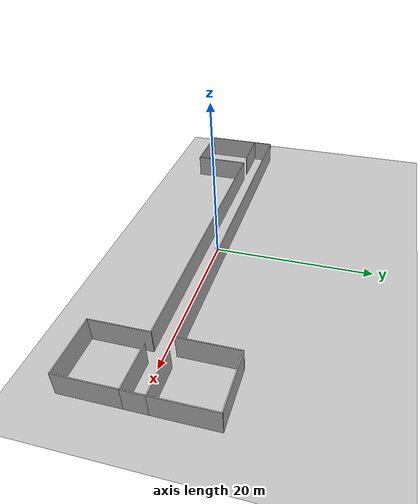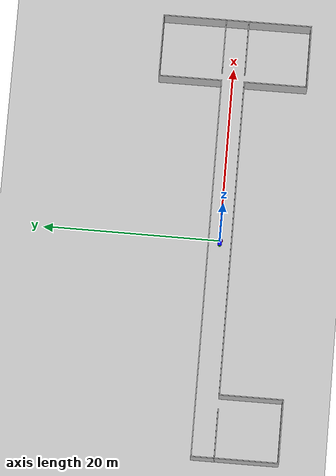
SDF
<?xml version="1.0" ?>
<sdf version="1.8">
    <world name="world_corridor">
        <physics name="1ms" type="ignored">
            <max_step_size>0.001</max_step_size>
            <real_time_factor>1.0</real_time_factor>
        </physics>

        <plugin
            filename="ignition-gazebo-physics-system"
            name="ignition::gazebo::systems::Physics">
        </plugin>
        <plugin
            filename="ignition-gazebo-user-commands-system"
            name="ignition::gazebo::systems::UserCommands">
        </plugin>
        <plugin
            filename="ignition-gazebo-scene-broadcaster-system"
            name="ignition::gazebo::systems::SceneBroadcaster">
        </plugin>

        <light type="directional" name="sun">
            <cast_shadows>false</cast_shadows>
            <pose>0 0 10 0 0 0</pose>
            <diffuse>0.8 0.8 0.8 1</diffuse>
            <specular>0.2 0.2 0.2 1</specular>
            <attenuation>
                <range>1000</range>
                <constant>0.9</constant>
                <linear>0.01</linear>
                <quadratic>0.001</quadratic>
            </attenuation>
            <direction>-0.5 0.1 -0.9</direction>
        </light>

        <model name="plane">
            <static>true</static>
            <pose relative_to="world">0 0 0 0 0 0</pose>

            <link name="plane">
                <pose relative_to="__model__">0 0 0 0 0 0</pose>
                <collision name="collision">
                    <geometry>
                        <plane>
                        <normal>0 0 1</normal>
                        </plane>
                    </geometry>
                </collision>
                <visual name="visual">
                    <geometry>
                        <plane>
                        <normal>0 0 1</normal>
                        <size>100 100 </size>
                        </plane>
                    </geometry>
                    <material>
                        <ambient>0.75 0.75 0.75 1</ambient>
                        <diffuse>0.75 0.75 0.75 1</diffuse>
                        <specular>0.75 0.75 0.75 1</specular>
                    </material>
                </visual>
            </link>
        </model>

        <model name="corridor">
            <static>true</static>
            <pose relative_to="plane">0 0 0 0 0 0</pose>

            <link name="east_wall">
                <pose relative_to="__model__">0 -1.3 1.5 0 0 0</pose>
                <collision name="collision">
                    <geometry>
                        <box>
                            <size>35.8 0.1 3</size>
                        </box>
                    </geometry>
                </collision>
                <visual name="visual">
                    <geometry>
                        <box>
                            <size>35.8 0.1 3</size>
                        </box>
                    </geometry>
                    <material>
                        <ambient>0.75 0.75 0.75 1</ambient>
                        <diffuse>0.75 0.75 0.75 1</diffuse>
                        <specular>0.75 0.75 0.75 1</specular>
                    </material>
                </visual>
            </link>

            <link name="west_wall">
                <pose relative_to="__model__">-3.55 1.3 1.5 0 0 0</pose>
                <collision name="collision">
                    <geometry>
                        <box>
                            <size>42.9 0.1 3</size>
                        </box>
                    </geometry>
                </collision>
                <visual name="visual">
                    <geometry>
                        <box>
                            <size>42.9 0.1 3</size>
                        </box>
                    </geometry>
                    <material>
                        <ambient>0.75 0.75 0.75 1</ambient>
                        <diffuse>0.75 0.75 0.75 1</diffuse>
                        <specular>0.75 0.75 0.75 1</specular>
                    </material>
                </visual>
            </link>

            <link name="north_wall">
                <pose relative_to="__model__">25.05 0 1.5 0 0 0</pose>
                <collision name="collision">
                    <geometry>
                        <box>
                            <size>0.1 2.7 3</size>
                        </box>
                    </geometry>
                </collision>
                <visual name="visual">
                    <geometry>
                        <box>
                            <size>0.1 2.7 3</size>
                        </box>
                    </geometry>
                    <material>
                        <ambient>0.75 0.75 0.75 1</ambient>
                        <diffuse>0.75 0.75 0.75 1</diffuse>
                        <specular>0.75 0.75 0.75 1</specular>
                    </material>
                </visual>
            </link>

            <link name="south_wall">
                <pose relative_to="__model__">-25.05 0 1.5 0 0 0</pose>
                <collision name="collision">
                    <geometry>
                        <box>
                            <size>0.1 2.7 3</size>
                        </box>
                    </geometry>
                </collision>
                <visual name="visual">
                    <geometry>
                        <box>
                            <size>0.1 2.7 3</size>
                        </box>
                    </geometry>
                    <material>
                        <ambient>0.75 0.75 0.75 1</ambient>
                        <diffuse>0.75 0.75 0.75 1</diffuse>
                        <specular>0.75 0.75 0.75 1</specular>
                    </material>
                </visual>
            </link>
        </model>

        <model name="room_1">
            <static>true</static>
            <pose relative_to="corridor">-21.5 -4.85 0 0 0 0</pose>

            <link name="east_wall">
                <pose relative_to="__model__">0 -3.55 1.5 0 0 0</pose>
                <collision name="collision">
                    <geometry>
                        <box>
                            <size>7 0.1 3</size>
                        </box>
                    </geometry>
                </collision>
                <visual name="visual">
                    <geometry>
                        <box>
                            <size>7 0.1 3</size>
                        </box>
                    </geometry>
                    <material>
                        <ambient>0.75 0.75 0.75 1</ambient>
                        <diffuse>0.75 0.75 0.75 1</diffuse>
                        <specular>0.75 0.75 0.75 1</specular>
                    </material>
                </visual>
            </link>

            <link name="west_wall">
                <pose relative_to="__model__">-0.75 3.55 1.5 0 0 0</pose>
                <collision name="collision">
                    <geometry>
                        <box>
                            <size>5.5 0.1 3</size>
                        </box>
                    </geometry>
                </collision>
                <visual name="visual">
                    <geometry>
                        <box>
                            <size>5.5 0.1 3</size>
                        </box>
                    </geometry>
                    <material>
                        <ambient>0.75 0.75 0.75 1</ambient>
                        <diffuse>0.75 0.75 0.75 1</diffuse>
                        <specular>0.75 0.75 0.75 1</specular>
                    </material>
                </visual>
            </link>

            <link name="north_wall">
                <pose relative_to="__model__">3.55 0 1.5 0 0 0</pose>
                <collision name="collision">
                    <geometry>
                        <box>
                            <size>0.1 7.2 3</size>
                        </box>
                    </geometry>
                </collision>
                <visual name="visual">
                    <geometry>
                        <box>
                            <size>0.1 7.2 3</size>
                        </box>
                    </geometry>
                    <material>
                        <ambient>0.75 0.75 0.75 1</ambient>
                        <diffuse>0.75 0.75 0.75 1</diffuse>
                        <specular>0.75 0.75 0.75 1</specular>
                    </material>
                </visual>
            </link>

            <link name="south_wall">
                <pose relative_to="__model__">-3.55 0 1.5 0 0 0</pose>
                <collision name="collision">
                    <geometry>
                        <box>
                            <size>0.1 7.2 3</size>
                        </box>
                    </geometry>
                </collision>
                <visual name="visual">
                    <geometry>
                        <box>
                            <size>0.1 7.2 3</size>
                        </box>
                    </geometry>
                    <material>
                        <ambient>0.75 0.75 0.75 1</ambient>
                        <diffuse>0.75 0.75 0.75 1</diffuse>
                        <specular>0.75 0.75 0.75 1</specular>
                    </material>
                </visual>
            </link>
        </model>

        <model name="room_2">
            <static>true</static>
            <pose relative_to="corridor">21.5 -4.85 0 0 0 0</pose>

            <link name="east_wall">
                <pose relative_to="__model__">0 -3.55 1.5 0 0 0</pose>
                <collision name="collision">
                    <geometry>
                        <box>
                            <size>7 0.1 3</size>
                        </box>
                    </geometry>
                </collision>
                <visual name="visual">
                    <geometry>
                        <box>
                            <size>7 0.1 3</size>
                        </box>
                    </geometry>
                    <material>
                        <ambient>0.75 0.75 0.75 1</ambient>
                        <diffuse>0.75 0.75 0.75 1</diffuse>
                        <specular>0.75 0.75 0.75 1</specular>
                    </material>
                </visual>
            </link>

            <link name="west_wall">
                <pose relative_to="__model__">0.75 3.55 1.5 0 0 0</pose>
                <collision name="collision">
                    <geometry>
                        <box>
                            <size>5.5 0.1 3</size>
                        </box>
                    </geometry>
                </collision>
                <visual name="visual">
                    <geometry>
                        <box>
                            <size>5.5 0.1 3</size>
                        </box>
                    </geometry>
                    <material>
                        <ambient>0.75 0.75 0.75 1</ambient>
                        <diffuse>0.75 0.75 0.75 1</diffuse>
                        <specular>0.75 0.75 0.75 1</specular>
                    </material>
                </visual>
            </link>

            <link name="north_wall">
                <pose relative_to="__model__">3.55 0 1.5 0 0 0</pose>
                <collision name="collision">
                    <geometry>
                        <box>
                            <size>0.1 7.2 3</size>
                        </box>
                    </geometry>
                </collision>
                <visual name="visual">
                    <geometry>
                        <box>
                            <size>0.1 7.2 3</size>
                        </box>
                    </geometry>
                    <material>
                        <ambient>0.75 0.75 0.75 1</ambient>
                        <diffuse>0.75 0.75 0.75 1</diffuse>
                        <specular>0.75 0.75 0.75 1</specular>
                    </material>
                </visual>
            </link>

            <link name="south_wall">
                <pose relative_to="__model__">-3.55 0 1.5 0 0 0</pose>
                <collision name="collision">
                    <geometry>
                        <box>
                            <size>0.1 7.2 3</size>
                        </box>
                    </geometry>
                </collision>
                <visual name="visual">
                    <geometry>
                        <box>
                            <size>0.1 7.2 3</size>
                        </box>
                    </geometry>
                    <material>
                        <ambient>0.75 0.75 0.75 1</ambient>
                        <diffuse>0.75 0.75 0.75 1</diffuse>
                        <specular>0.75 0.75 0.75 1</specular>
                    </material>
                </visual>
            </link>
        </model>

        <model name="room_3">
            <static>true</static>
            <pose relative_to="corridor">21.5 4.85 0 0 0 0</pose>

            <link name="east_wall">
                <pose relative_to="__model__">0.75 -3.55 1.5 0 0 0</pose>
                <collision name="collision">
                    <geometry>
                        <box>
                            <size>5.5 0.1 3</size>
                        </box>
                    </geometry>
                </collision>
                <visual name="visual">
                    <geometry>
                        <box>
                            <size>5.5 0.1 3</size>
                        </box>
                    </geometry>
                    <material>
                        <ambient>0.75 0.75 0.75 1</ambient>
                        <diffuse>0.75 0.75 0.75 1</diffuse>
                        <specular>0.75 0.75 0.75 1</specular>
                    </material>
                </visual>
            </link>

            <link name="west_wall">
                <pose relative_to="__model__">0 3.55 1.5 0 0 0</pose>
                <collision name="collision">
                    <geometry>
                        <box>
                            <size>7 0.1 3</size>
                        </box>
                    </geometry>
                </collision>
                <visual name="visual">
                    <geometry>
                        <box>
                            <size>7 0.1 3</size>
                        </box>
                    </geometry>
                    <material>
                        <ambient>0.75 0.75 0.75 1</ambient>
                        <diffuse>0.75 0.75 0.75 1</diffuse>
                        <specular>0.75 0.75 0.75 1</specular>
                    </material>
                </visual>
            </link>

            <link name="north_wall">
                <pose relative_to="__model__">3.55 0 1.5 0 0 0</pose>
                <collision name="collision">
                    <geometry>
                        <box>
                            <size>0.1 7.2 3</size>
                        </box>
                    </geometry>
                </collision>
                <visual name="visual">
                    <geometry>
                        <box>
                            <size>0.1 7.2 3</size>
                        </box>
                    </geometry>
                    <material>
                        <ambient>0.75 0.75 0.75 1</ambient>
                        <diffuse>0.75 0.75 0.75 1</diffuse>
                        <specular>0.75 0.75 0.75 1</specular>
                    </material>
                </visual>
            </link>

            <link name="south_wall">
                <pose relative_to="__model__">-3.55 0 1.5 0 0 0</pose>
                <collision name="collision">
                    <geometry>
                        <box>
                            <size>0.1 7.2 3</size>
                        </box>
                    </geometry>
                </collision>
                <visual name="visual">
                    <geometry>
                        <box>
                            <size>0.1 7.2 3</size>
                        </box>
                    </geometry>
                    <material>
                        <ambient>0.75 0.75 0.75 1</ambient>
                        <diffuse>0.75 0.75 0.75 1</diffuse>
                        <specular>0.75 0.75 0.75 1</specular>
                    </material>
                </visual>
            </link>
        </model>

        <model name="wheelchair">
            <pose>0 0 0 0 0 0</pose>
            <include merge="true">
                <uri>package://ros_gz_wheelchair_description/models/wheelchair</uri>
            </include>
        </model>
    </world>
</sdf>

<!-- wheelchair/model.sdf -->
<sdf version="1.8">
    <model name='wheelchair'>
        <!--base frame of the wheelchair-->
        <link name="center">
            <pose relative_to="__model__">0 0 0.12925 0 0 0</pose>
        </link>

        <!--Chassis Link-->
        <link name='chassis'>
            <pose relative_to='center'>-0.175 0 0.1 0 0 0</pose>
            <inertial>
                <mass>20</mass>
                <inertia>
                    <ixx>0.4113</ixx>
                    <ixy>0</ixy>
                    <ixz>0</ixz>
                    <iyy>1.0042</iyy>
                    <iyz>0</iyz>
                    <izz>1.2821</izz>
                </inertia>
            </inertial>
            <visual name='visual'>
                <geometry>
                    <box>
                        <size>0.75 0.4547 0.2</size>
                    </box>
                </geometry>
                <material>
                    <ambient>0.0 0.0 1.0 1</ambient>
                    <diffuse>0.0 0.0 1.0 1</diffuse>
                    <specular>0.0 0.0 1.0 1</specular>
                </material>
            </visual>
            <collision name='collision'>
                <geometry>
                    <box>
                        <size>0.75 0.4547 0.2</size>
                    </box>
                </geometry>
            </collision>
            <sensor name="imu_sensor" type="imu">
                <always_on>1</always_on>
                <update_rate>10</update_rate>
                <visualize>false</visualize>
                <topic>imu</topic>
                <pose relative_to='center'>0 0 0 0 0 0</pose>
            </sensor>
        </link>

        <!--Left Wheel Link-->
        <link name='left_wheel'>
            <pose relative_to='center'>0 0.26985 0 -1.5707 0 0</pose>
            <inertial>
                <mass>1</mass>
                <inertia>
                    <ixx>4.77847e-3</ixx>
                    <ixy>0</ixy>
                    <ixz>0</ixz>
                    <iyy>4.77847e-3</iyy>
                    <iyz>0</iyz>
                    <izz>8.35278e-3</izz>
                </inertia>
            </inertial>
            <visual name='visual'>
                <geometry>
                    <cylinder>
                        <radius>0.12925</radius>
                        <length>0.085</length>
                    </cylinder>
                </geometry>
                <material>
                    <ambient>1.0 0.0 0.0 1</ambient>
                    <diffuse>1.0 0.0 0.0 1</diffuse>
                    <specular>1.0 0.0 0.0 1</specular>
                </material>
            </visual>
            <collision name='collision'>
                <geometry>
                    <cylinder>
                        <radius>0.12925</radius>
                        <length>0.085</length>
                    </cylinder>
                </geometry>
            </collision>
        </link>

        <!--Right Wheel Link-->
        <link name='right_wheel'>
            <pose relative_to='center'>0 -0.26985 0 -1.5707 0 0</pose>
            <inertial>
                <mass>1</mass>
                <inertia>
                    <ixx>4.77847e-3</ixx>
                    <ixy>0</ixy>
                    <ixz>0</ixz>
                    <iyy>4.77847e-3</iyy>
                    <iyz>0</iyz>
                    <izz>8.35278e-3</izz>
                </inertia>
            </inertial>
            <visual name='visual'>
                <geometry>
                    <cylinder>
                        <radius>0.12925</radius>
                        <length>0.085</length>
                    </cylinder>
                </geometry>
                <material>
                    <ambient>1.0 0.0 0.0 1</ambient>
                    <diffuse>1.0 0.0 0.0 1</diffuse>
                    <specular>1.0 0.0 0.0 1</specular>
                </material>
            </visual>
            <collision name='collision'>
                <geometry>
                    <cylinder>
                        <radius>0.12925</radius>
                        <length>0.085</length>
                    </cylinder>
                </geometry>
            </collision>
        </link>

        <!--Laser Link-->
        <link name="laser">
            <pose relative_to="center">-0.74 0 1.40575 0 0 0</pose>
            <visual name="visual">
                <geometry>
                    <cylinder>
                        <radius>0.0381</radius>
                        <length>0.0381</length>
                    </cylinder>
                </geometry>
                <material>
                    <ambient>1 1 1 1</ambient>
                    <diffuse>1 1 1 1</diffuse>
                    <specular>1 1 1 1</specular>
                </material>
            </visual>
            <collision name='collision'>
                <geometry>
                    <cylinder>
                        <radius>0.0381</radius>
                        <length>0.0381</length>
                    </cylinder>
                </geometry>
            </collision>
            <sensor name='lidar' type='gpu_lidar'>
                <pose>0 0 0 0 0 0</pose>
                <topic>lidar</topic>
                <ignition_frame_id>laser</ignition_frame_id>
                <update_rate>10</update_rate>
                <ray>
                    <scan>
                        <horizontal>
                            <samples>640</samples>
                            <resolution>1</resolution>
                            <min_angle>-3.141592654</min_angle>
                            <max_angle>3.141592654</max_angle>
                        </horizontal>
                        <vertical>
                            <samples>1</samples>
                            <resolution>0.01</resolution>
                            <min_angle>0</min_angle>
                            <max_angle>0</max_angle>
                        </vertical>
                    </scan>
                    <range>
                        <min>0.08</min>
                        <max>60.0</max>
                        <resolution>0.01</resolution>
                    </range>
                </ray>
                <always_on>1</always_on>
                <visualize>true</visualize>
            </sensor>
        </link>

        <!--Camera Link-->
        <link name="camera">
            <pose relative_to="laser">0 0 -0.075 0 0 0</pose>
            <visual name="visual">
                <geometry>
                    <box>
                        <size>0.0225 0.088 0.0225</size>
                    </box>
                </geometry>
                <material>
                    <ambient>1 1 1 1</ambient>
                    <diffuse>1 1 1 1</diffuse>
                    <specular>1 1 1 1</specular>
                </material>
            </visual>
            <collision name='collision'>
                <geometry>
                    <box>
                        <size>0.0225 0.088 0.0225</size>
                    </box>
                </geometry>
            </collision>
        </link>

        <!--Caster Wheel Link-->
        <link name='caster'>
            <pose relative_to='center'>-0.55 0 0 0 0 0</pose>
            <inertial>
                <mass>1</mass>
                <inertia>
                    <ixx>0.016</ixx>
                    <ixy>0</ixy>
                    <ixz>0</ixz>
                    <iyy>0.016</iyy>
                    <iyz>0</iyz>
                    <izz>0.016</izz>
                </inertia>
            </inertial>
            <visual name='visual'>
                <geometry>
                    <sphere>
                        <radius>0.12925</radius>
                    </sphere>
                </geometry>
                <material>
                    <ambient>0.0 1.0 0.0 1</ambient>
                    <diffuse>0.0 1.0 0.0 1</diffuse>
                    <specular>0.0 1.0 0.0 1</specular>
                </material>
            </visual>
            <collision name='collision'>
                <geometry>
                    <sphere>
                        <radius>0.12925</radius>
                    </sphere>
                </geometry>
            </collision>
        </link>

        <joint name="center_chassis_joint" type="fixed">
            <pose relative_to="center">0 0 0 0 0 0</pose>
            <parent>center</parent>
            <child>chassis</child>
        </joint>

        <!-- Joint between chassis and the left wheel -->
        <joint name='left_wheel_joint' type='revolute'>
            <pose relative_to='left_wheel'>0 0 0 0 0 0</pose>
            <parent>center</parent>
            <child>left_wheel</child>
            <axis>
                <xyz expressed_in='left_wheel'>0 0 1</xyz>
                <limit>
                    <lower>-1.79769e+308</lower>    <!--negative infinity-->
                    <upper>1.79769e+308</upper>     <!--positive infinity-->
                </limit>
            </axis>
        </joint>

        <!-- Joint between chassis and the right wheel -->
        <joint name='right_wheel_joint' type='revolute'>
            <pose relative_to='right_wheel'>0 0 0 0 0 0</pose>
            <parent>center</parent>
            <child>right_wheel</child>
            <axis>
                <xyz expressed_in='right_wheel'>0 0 1</xyz>
                <limit>
                    <lower>-1.79769e+308</lower>    <!--negative infinity-->
                    <upper>1.79769e+308</upper>     <!--positive infinity-->
                </limit>
            </axis>
        </joint>

        <!--Joint between Chassis and Laser-->
        <joint name="laser_joint" type="fixed">
            <pose relative_to="laser"></pose>
            <parent>chassis</parent>
            <child>laser</child>
        </joint>

        <!--Joint between LiDar and Camera-->
        <joint name="camera_joint" type="fixed">
            <pose relative_to="camera"></pose>
            <parent>laser</parent>
            <child>camera</child>
        </joint>

        <!--Joint where the caster wheel attached to the chassis-->
        <joint name='caster_wheel' type='ball'>
            <parent>center</parent>
            <child>caster</child>
        </joint>

        <!--Plugin for driving the robot-->
        <plugin
            filename='ignition-gazebo-diff-drive-system'
            name='ignition::gazebo::systems::DiffDrive'>
            <left_joint>left_wheel_joint</left_joint>
            <right_joint>right_wheel_joint</right_joint>
            <wheel_separation>0.5397</wheel_separation>
            <wheel_radius>0.12925</wheel_radius>
            <odom_publish_frequency>10</odom_publish_frequency>
            <max_linear_acceleration>1</max_linear_acceleration>
            <min_linear_acceleration>-1</min_linear_acceleration>
            <max_angular_acceleration>2</max_angular_acceleration>
            <min_angular_acceleration>-2</min_angular_acceleration>
            <max_linear_velocity>0.5</max_linear_velocity>
            <min_linear_velocity>-0.5</min_linear_velocity>
            <max_angular_velocity>1</max_angular_velocity>
            <min_angular_velocity>-1</min_angular_velocity>
            <topic>cmd_vel</topic>
        </plugin>

        <!--Plugin for lidar-->
        <plugin
            filename="ignition-gazebo-sensors-system"
            name="ignition::gazebo::systems::Sensors">
            <render_engine>ogre2</render_engine>
        </plugin>

        <!--Plugin for imu sensor-->
        <plugin
            filename="ignition-gazebo-imu-system"
            name="ignition::gazebo::systems::Imu">
        </plugin>

        <plugin
            filename="ignition-gazebo-joint-state-publisher-system"
            name="ignition::gazebo::systems::JointStatePublisher">
        </plugin>

        <plugin
            filename="ignition-gazebo-pose-publisher-system"
            name="ignition::gazebo::systems::PosePublisher">
            <publish_link_pose>true</publish_link_pose>
            <use_pose_vector_msg>true</use_pose_vector_msg>
            <static_publisher>true</static_publisher>
            <static_update_frequency>1</static_update_frequency>
        </plugin>

        <plugin
            filename="ignition-gazebo-odometry-publisher-system"
            name="ignition::gazebo::systems::OdometryPublisher">
            <odom_frame>diff_drive/odom</odom_frame>
            <robot_base_frame>diff_drive</robot_base_frame>
        </plugin>

    </model>
</sdf>
